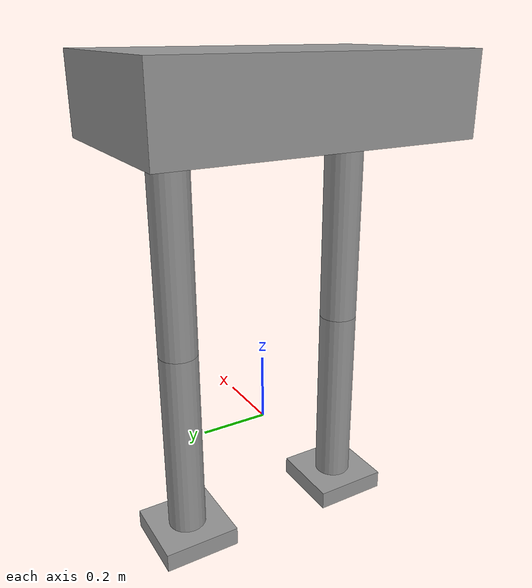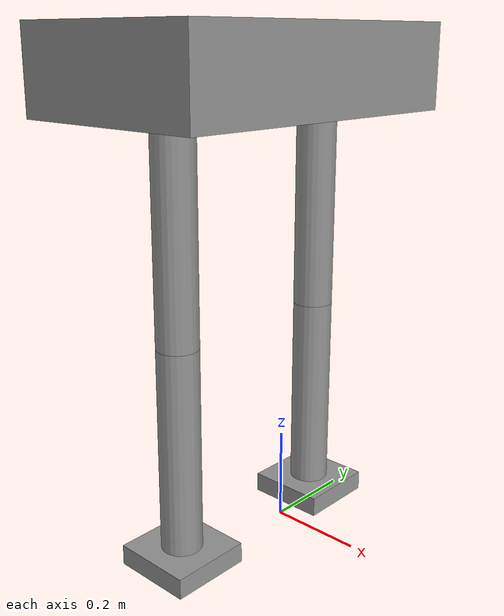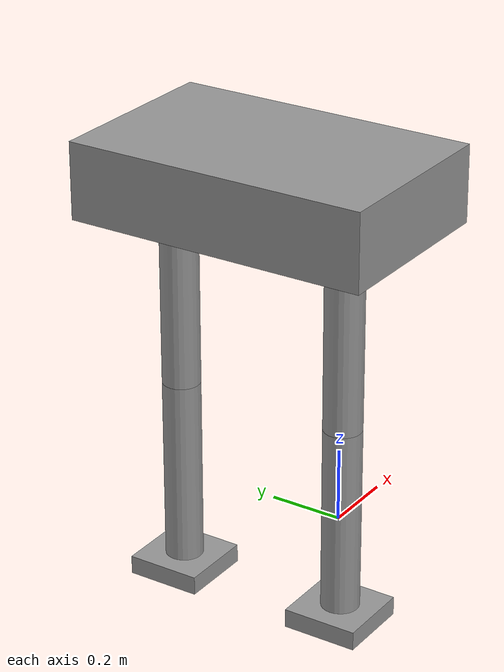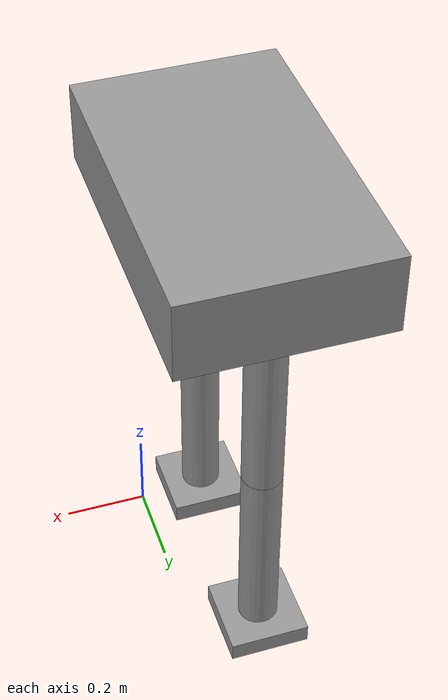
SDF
<?xml version='1.0'?>
<sdf version='1.6'>
  <model name='HumanoidRobot'>
    <link name='link_0_clone'>
      <pose frame=''>-0.198443 -0.127142 -0.1375 0 -0 0</pose>
      <inertial>
        <mass>1</mass>
        <inertia>
          <ixx>0.166667</ixx>
          <ixy>0</ixy>
          <ixz>0</ixz>
          <iyy>0.166667</iyy>
          <iyz>0</iyz>
          <izz>0.166667</izz>
        </inertia>
        <pose frame=''>0 0 0 0 -0 0</pose>
      </inertial>
      <self_collide>0</self_collide>
      <kinematic>0</kinematic>
      <visual name='visual'>
        <pose frame=''>0 0 0 0 -0 0</pose>
        <geometry>
          <box>
            <size>0.2 0.2 0.05</size>
          </box>
        </geometry>
        <material>
          <lighting>1</lighting>
          <script>
            <uri>file://media/materials/scripts/gazebo.material</uri>
            <name>Gazebo/Grey</name>
          </script>
          <shader type='pixel'>
            <normal_map>__default__</normal_map>
          </shader>
          <ambient>0.3 0.3 0.3 1</ambient>
          <diffuse>0.7 0.7 0.7 1</diffuse>
          <specular>0.01 0.01 0.01 1</specular>
          <emissive>0 0 0 1</emissive>
        </material>
        <transparency>0</transparency>
        <cast_shadows>1</cast_shadows>
      </visual>
      <collision name='collision'>
        <laser_retro>0</laser_retro>
        <max_contacts>10</max_contacts>
        <pose frame=''>0 0 0 0 -0 0</pose>
        <geometry>
          <box>
            <size>0.2 0.2 0.05</size>
          </box>
        </geometry>
        <surface>
          <friction>
            <ode>
              <mu>1</mu>
              <mu2>1</mu2>
              <fdir1>0 0 0</fdir1>
              <slip1>0</slip1>
              <slip2>0</slip2>
            </ode>
            <torsional>
              <coefficient>1</coefficient>
              <patch_radius>0</patch_radius>
              <surface_radius>0</surface_radius>
              <use_patch_radius>1</use_patch_radius>
              <ode>
                <slip>0</slip>
              </ode>
            </torsional>
          </friction>
          <bounce>
            <restitution_coefficient>0</restitution_coefficient>
            <threshold>1e+06</threshold>
          </bounce>
          <contact>
            <collide_without_contact>0</collide_without_contact>
            <collide_without_contact_bitmask>1</collide_without_contact_bitmask>
            <collide_bitmask>1</collide_bitmask>
            <ode>
              <soft_cfm>0</soft_cfm>
              <soft_erp>0.2</soft_erp>
              <kp>1e+13</kp>
              <kd>1</kd>
              <max_vel>0.01</max_vel>
              <min_depth>0</min_depth>
            </ode>
            <bullet>
              <split_impulse>1</split_impulse>
              <split_impulse_penetration_threshold>-0.01</split_impulse_penetration_threshold>
              <soft_cfm>0</soft_cfm>
              <soft_erp>0.2</soft_erp>
              <kp>1e+13</kp>
              <kd>1</kd>
            </bullet>
          </contact>
        </surface>
      </collision>
    </link>
    <link name='link_0_clone_clone'>
      <pose frame=''>-0.198527 0.351681 -0.137499 0 -0 0</pose>
      <inertial>
        <mass>1</mass>
        <inertia>
          <ixx>0.166667</ixx>
          <ixy>0</ixy>
          <ixz>0</ixz>
          <iyy>0.166667</iyy>
          <iyz>0</iyz>
          <izz>0.166667</izz>
        </inertia>
        <pose frame=''>0 0 0 0 -0 0</pose>
      </inertial>
      <self_collide>0</self_collide>
      <kinematic>0</kinematic>
      <visual name='visual'>
        <pose frame=''>0 0 0 0 -0 0</pose>
        <geometry>
          <box>
            <size>0.2 0.2 0.05</size>
          </box>
        </geometry>
        <material>
          <lighting>1</lighting>
          <script>
            <uri>file://media/materials/scripts/gazebo.material</uri>
            <name>Gazebo/Grey</name>
          </script>
          <shader type='pixel'>
            <normal_map>__default__</normal_map>
          </shader>
          <ambient>0.3 0.3 0.3 1</ambient>
          <diffuse>0.7 0.7 0.7 1</diffuse>
          <specular>0.01 0.01 0.01 1</specular>
          <emissive>0 0 0 1</emissive>
        </material>
        <transparency>0</transparency>
        <cast_shadows>1</cast_shadows>
      </visual>
      <collision name='collision'>
        <laser_retro>0</laser_retro>
        <max_contacts>10</max_contacts>
        <pose frame=''>0 0 0 0 -0 0</pose>
        <geometry>
          <box>
            <size>0.2 0.2 0.05</size>
          </box>
        </geometry>
        <surface>
          <friction>
            <ode>
              <mu>1</mu>
              <mu2>1</mu2>
              <fdir1>0 0 0</fdir1>
              <slip1>0</slip1>
              <slip2>0</slip2>
            </ode>
            <torsional>
              <coefficient>1</coefficient>
              <patch_radius>0</patch_radius>
              <surface_radius>0</surface_radius>
              <use_patch_radius>1</use_patch_radius>
              <ode>
                <slip>0</slip>
              </ode>
            </torsional>
          </friction>
          <bounce>
            <restitution_coefficient>0</restitution_coefficient>
            <threshold>1e+06</threshold>
          </bounce>
          <contact>
            <collide_without_contact>0</collide_without_contact>
            <collide_without_contact_bitmask>1</collide_without_contact_bitmask>
            <collide_bitmask>1</collide_bitmask>
            <ode>
              <soft_cfm>0</soft_cfm>
              <soft_erp>0.2</soft_erp>
              <kp>1e+13</kp>
              <kd>1</kd>
              <max_vel>0.01</max_vel>
              <min_depth>0</min_depth>
            </ode>
            <bullet>
              <split_impulse>1</split_impulse>
              <split_impulse_penetration_threshold>-0.01</split_impulse_penetration_threshold>
              <soft_cfm>0</soft_cfm>
              <soft_erp>0.2</soft_erp>
              <kp>1e+13</kp>
              <kd>1</kd>
            </bullet>
          </contact>
        </surface>
      </collision>
    </link>
    <link name='link_1_clone'>
      <pose frame=''>-0.19848 0.086402 0.987501 0 2e-06 0.000352</pose>
      <inertial>
        <mass>1</mass>
        <inertia>
          <ixx>0.166667</ixx>
          <ixy>0</ixy>
          <ixz>0</ixz>
          <iyy>0.166667</iyy>
          <iyz>0</iyz>
          <izz>0.166667</izz>
        </inertia>
        <pose frame=''>0 0 0 0 -0 0</pose>
      </inertial>
      <self_collide>0</self_collide>
      <kinematic>0</kinematic>
      <visual name='visual'>
        <pose frame=''>0 0 0 0 -0 0</pose>
        <geometry>
          <box>
            <size>0.5 0.8 0.2</size>
          </box>
        </geometry>
        <material>
          <lighting>1</lighting>
          <script>
            <uri>file://media/materials/scripts/gazebo.material</uri>
            <name>Gazebo/Grey</name>
          </script>
          <shader type='pixel'>
            <normal_map>__default__</normal_map>
          </shader>
          <ambient>0.3 0.3 0.3 1</ambient>
          <diffuse>0.7 0.7 0.7 1</diffuse>
          <specular>0.01 0.01 0.01 1</specular>
          <emissive>0 0 0 1</emissive>
        </material>
        <transparency>0</transparency>
        <cast_shadows>1</cast_shadows>
      </visual>
      <collision name='collision'>
        <laser_retro>0</laser_retro>
        <max_contacts>10</max_contacts>
        <pose frame=''>0 0 0 0 -0 0</pose>
        <geometry>
          <box>
            <size>0.5 0.8 0.2</size>
          </box>
        </geometry>
        <surface>
          <friction>
            <ode>
              <mu>1</mu>
              <mu2>1</mu2>
              <fdir1>0 0 0</fdir1>
              <slip1>0</slip1>
              <slip2>0</slip2>
            </ode>
            <torsional>
              <coefficient>1</coefficient>
              <patch_radius>0</patch_radius>
              <surface_radius>0</surface_radius>
              <use_patch_radius>1</use_patch_radius>
              <ode>
                <slip>0</slip>
              </ode>
            </torsional>
          </friction>
          <bounce>
            <restitution_coefficient>0</restitution_coefficient>
            <threshold>1e+06</threshold>
          </bounce>
          <contact>
            <collide_without_contact>0</collide_without_contact>
            <collide_without_contact_bitmask>1</collide_without_contact_bitmask>
            <collide_bitmask>1</collide_bitmask>
            <ode>
              <soft_cfm>0</soft_cfm>
              <soft_erp>0.2</soft_erp>
              <kp>1e+13</kp>
              <kd>1</kd>
              <max_vel>0.01</max_vel>
              <min_depth>0</min_depth>
            </ode>
            <bullet>
              <split_impulse>1</split_impulse>
              <split_impulse_penetration_threshold>-0.01</split_impulse_penetration_threshold>
              <soft_cfm>0</soft_cfm>
              <soft_erp>0.2</soft_erp>
              <kp>1e+13</kp>
              <kd>1</kd>
            </bullet>
          </contact>
        </surface>
      </collision>
    </link>
    <link name='link_2_clone_clone'>
      <pose frame=''>-0.198527 0.351681 0.137501 0 -0 0</pose>
      <inertial>
        <mass>1</mass>
        <inertia>
          <ixx>0.145833</ixx>
          <ixy>0</ixy>
          <ixz>0</ixz>
          <iyy>0.145833</iyy>
          <iyz>0</iyz>
          <izz>0.125</izz>
        </inertia>
        <pose frame=''>0 0 0 0 -0 0</pose>
      </inertial>
      <self_collide>0</self_collide>
      <kinematic>0</kinematic>
      <visual name='visual'>
        <pose frame=''>0 0 0 0 -0 0</pose>
        <geometry>
          <cylinder>
            <radius>0.05</radius>
            <length>0.5</length>
          </cylinder>
        </geometry>
        <material>
          <lighting>1</lighting>
          <script>
            <uri>file://media/materials/scripts/gazebo.material</uri>
            <name>Gazebo/Grey</name>
          </script>
          <shader type='pixel'>
            <normal_map>__default__</normal_map>
          </shader>
          <ambient>0.3 0.3 0.3 1</ambient>
          <diffuse>0.7 0.7 0.7 1</diffuse>
          <specular>0.01 0.01 0.01 1</specular>
          <emissive>0 0 0 1</emissive>
        </material>
        <transparency>0</transparency>
        <cast_shadows>1</cast_shadows>
      </visual>
      <collision name='collision'>
        <laser_retro>0</laser_retro>
        <max_contacts>10</max_contacts>
        <pose frame=''>0 0 0 0 -0 0</pose>
        <geometry>
          <cylinder>
            <radius>0.05</radius>
            <length>0.5</length>
          </cylinder>
        </geometry>
        <surface>
          <friction>
            <ode>
              <mu>1</mu>
              <mu2>1</mu2>
              <fdir1>0 0 0</fdir1>
              <slip1>0</slip1>
              <slip2>0</slip2>
            </ode>
            <torsional>
              <coefficient>1</coefficient>
              <patch_radius>0</patch_radius>
              <surface_radius>0</surface_radius>
              <use_patch_radius>1</use_patch_radius>
              <ode>
                <slip>0</slip>
              </ode>
            </torsional>
          </friction>
          <bounce>
            <restitution_coefficient>0</restitution_coefficient>
            <threshold>1e+06</threshold>
          </bounce>
          <contact>
            <collide_without_contact>0</collide_without_contact>
            <collide_without_contact_bitmask>1</collide_without_contact_bitmask>
            <collide_bitmask>1</collide_bitmask>
            <ode>
              <soft_cfm>0</soft_cfm>
              <soft_erp>0.2</soft_erp>
              <kp>1e+13</kp>
              <kd>1</kd>
              <max_vel>0.01</max_vel>
              <min_depth>0</min_depth>
            </ode>
            <bullet>
              <split_impulse>1</split_impulse>
              <split_impulse_penetration_threshold>-0.01</split_impulse_penetration_threshold>
              <soft_cfm>0</soft_cfm>
              <soft_erp>0.2</soft_erp>
              <kp>1e+13</kp>
              <kd>1</kd>
            </bullet>
          </contact>
        </surface>
      </collision>
    </link>
    <link name='link_2_clone_clone_0'>
      <pose frame=''>-0.198442 -0.128015 0.637501 -0 1e-06 0.000176</pose>
      <inertial>
        <mass>1</mass>
        <inertia>
          <ixx>0.145833</ixx>
          <ixy>0</ixy>
          <ixz>0</ixz>
          <iyy>0.145833</iyy>
          <iyz>0</iyz>
          <izz>0.125</izz>
        </inertia>
        <pose frame=''>0 0 0 0 -0 0</pose>
      </inertial>
      <self_collide>0</self_collide>
      <kinematic>0</kinematic>
      <gravity>1</gravity>
      <visual name='visual'>
        <pose frame=''>0 0 0 0 -0 0</pose>
        <geometry>
          <cylinder>
            <radius>0.05</radius>
            <length>0.5</length>
          </cylinder>
        </geometry>
        <material>
          <lighting>1</lighting>
          <script>
            <uri>file://media/materials/scripts/gazebo.material</uri>
            <name>Gazebo/Grey</name>
          </script>
          <shader type='pixel'>
            <normal_map>__default__</normal_map>
          </shader>
          <ambient>0.3 0.3 0.3 1</ambient>
          <diffuse>0.7 0.7 0.7 1</diffuse>
          <specular>0.01 0.01 0.01 1</specular>
          <emissive>0 0 0 1</emissive>
        </material>
        <transparency>0</transparency>
        <cast_shadows>1</cast_shadows>
      </visual>
      <collision name='collision'>
        <laser_retro>0</laser_retro>
        <max_contacts>10</max_contacts>
        <pose frame=''>0 0 0 0 -0 0</pose>
        <geometry>
          <cylinder>
            <radius>0.05</radius>
            <length>0.5</length>
          </cylinder>
        </geometry>
        <surface>
          <friction>
            <ode>
              <mu>1</mu>
              <mu2>1</mu2>
              <fdir1>0 0 0</fdir1>
              <slip1>0</slip1>
              <slip2>0</slip2>
            </ode>
            <torsional>
              <coefficient>1</coefficient>
              <patch_radius>0</patch_radius>
              <surface_radius>0</surface_radius>
              <use_patch_radius>1</use_patch_radius>
              <ode>
                <slip>0</slip>
              </ode>
            </torsional>
          </friction>
          <bounce>
            <restitution_coefficient>0</restitution_coefficient>
            <threshold>1e+06</threshold>
          </bounce>
          <contact>
            <collide_without_contact>0</collide_without_contact>
            <collide_without_contact_bitmask>1</collide_without_contact_bitmask>
            <collide_bitmask>1</collide_bitmask>
            <ode>
              <soft_cfm>0</soft_cfm>
              <soft_erp>0.2</soft_erp>
              <kp>1e+13</kp>
              <kd>1</kd>
              <max_vel>0.01</max_vel>
              <min_depth>0</min_depth>
            </ode>
            <bullet>
              <split_impulse>1</split_impulse>
              <split_impulse_penetration_threshold>-0.01</split_impulse_penetration_threshold>
              <soft_cfm>0</soft_cfm>
              <soft_erp>0.2</soft_erp>
              <kp>1e+13</kp>
              <kd>1</kd>
            </bullet>
          </contact>
        </surface>
      </collision>
    </link>
    <link name='link_2_clone_clone_0_clone'>
      <pose frame=''>-0.198526 0.351681 0.637501 0 2e-06 0.000352</pose>
      <inertial>
        <mass>1</mass>
        <inertia>
          <ixx>0.145833</ixx>
          <ixy>0</ixy>
          <ixz>0</ixz>
          <iyy>0.145833</iyy>
          <iyz>0</iyz>
          <izz>0.125</izz>
        </inertia>
        <pose frame=''>0 0 0 0 -0 0</pose>
      </inertial>
      <self_collide>0</self_collide>
      <kinematic>0</kinematic>
      <visual name='visual'>
        <pose frame=''>0 0 0 0 -0 0</pose>
        <geometry>
          <cylinder>
            <radius>0.05</radius>
            <length>0.5</length>
          </cylinder>
        </geometry>
        <material>
          <lighting>1</lighting>
          <script>
            <uri>file://media/materials/scripts/gazebo.material</uri>
            <name>Gazebo/Grey</name>
          </script>
          <shader type='pixel'>
            <normal_map>__default__</normal_map>
          </shader>
          <ambient>0.3 0.3 0.3 1</ambient>
          <diffuse>0.7 0.7 0.7 1</diffuse>
          <specular>0.01 0.01 0.01 1</specular>
          <emissive>0 0 0 1</emissive>
        </material>
        <transparency>0</transparency>
        <cast_shadows>1</cast_shadows>
      </visual>
      <collision name='collision'>
        <laser_retro>0</laser_retro>
        <max_contacts>10</max_contacts>
        <pose frame=''>0 0 0 0 -0 0</pose>
        <geometry>
          <cylinder>
            <radius>0.05</radius>
            <length>0.5</length>
          </cylinder>
        </geometry>
        <surface>
          <friction>
            <ode>
              <mu>1</mu>
              <mu2>1</mu2>
              <fdir1>0 0 0</fdir1>
              <slip1>0</slip1>
              <slip2>0</slip2>
            </ode>
            <torsional>
              <coefficient>1</coefficient>
              <patch_radius>0</patch_radius>
              <surface_radius>0</surface_radius>
              <use_patch_radius>1</use_patch_radius>
              <ode>
                <slip>0</slip>
              </ode>
            </torsional>
          </friction>
          <bounce>
            <restitution_coefficient>0</restitution_coefficient>
            <threshold>1e+06</threshold>
          </bounce>
          <contact>
            <collide_without_contact>0</collide_without_contact>
            <collide_without_contact_bitmask>1</collide_without_contact_bitmask>
            <collide_bitmask>1</collide_bitmask>
            <ode>
              <soft_cfm>0</soft_cfm>
              <soft_erp>0.2</soft_erp>
              <kp>1e+13</kp>
              <kd>1</kd>
              <max_vel>0.01</max_vel>
              <min_depth>0</min_depth>
            </ode>
            <bullet>
              <split_impulse>1</split_impulse>
              <split_impulse_penetration_threshold>-0.01</split_impulse_penetration_threshold>
              <soft_cfm>0</soft_cfm>
              <soft_erp>0.2</soft_erp>
              <kp>1e+13</kp>
              <kd>1</kd>
            </bullet>
          </contact>
        </surface>
      </collision>
    </link>
    <link name='link_2_clone_clone_clone'>
      <pose frame=''>-0.198443 -0.128015 0.137501 -0 1e-06 0.000176</pose>
      <inertial>
        <mass>1</mass>
        <inertia>
          <ixx>0.145833</ixx>
          <ixy>0</ixy>
          <ixz>0</ixz>
          <iyy>0.145833</iyy>
          <iyz>0</iyz>
          <izz>0.125</izz>
        </inertia>
        <pose frame=''>0 0 0 0 -0 0</pose>
      </inertial>
      <self_collide>0</self_collide>
      <kinematic>0</kinematic>
      <visual name='visual'>
        <pose frame=''>0 0 0 0 -0 0</pose>
        <geometry>
          <cylinder>
            <radius>0.05</radius>
            <length>0.5</length>
          </cylinder>
        </geometry>
        <material>
          <lighting>1</lighting>
          <script>
            <uri>file://media/materials/scripts/gazebo.material</uri>
            <name>Gazebo/Grey</name>
          </script>
          <shader type='pixel'>
            <normal_map>__default__</normal_map>
          </shader>
          <ambient>0.3 0.3 0.3 1</ambient>
          <diffuse>0.7 0.7 0.7 1</diffuse>
          <specular>0.01 0.01 0.01 1</specular>
          <emissive>0 0 0 1</emissive>
        </material>
        <transparency>0</transparency>
        <cast_shadows>1</cast_shadows>
      </visual>
      <collision name='collision'>
        <laser_retro>0</laser_retro>
        <max_contacts>10</max_contacts>
        <pose frame=''>0 0 0 0 -0 0</pose>
        <geometry>
          <cylinder>
            <radius>0.05</radius>
            <length>0.5</length>
          </cylinder>
        </geometry>
        <surface>
          <friction>
            <ode>
              <mu>1</mu>
              <mu2>1</mu2>
              <fdir1>0 0 0</fdir1>
              <slip1>0</slip1>
              <slip2>0</slip2>
            </ode>
            <torsional>
              <coefficient>1</coefficient>
              <patch_radius>0</patch_radius>
              <surface_radius>0</surface_radius>
              <use_patch_radius>1</use_patch_radius>
              <ode>
                <slip>0</slip>
              </ode>
            </torsional>
          </friction>
          <bounce>
            <restitution_coefficient>0</restitution_coefficient>
            <threshold>1e+06</threshold>
          </bounce>
          <contact>
            <collide_without_contact>0</collide_without_contact>
            <collide_without_contact_bitmask>1</collide_without_contact_bitmask>
            <collide_bitmask>1</collide_bitmask>
            <ode>
              <soft_cfm>0</soft_cfm>
              <soft_erp>0.2</soft_erp>
              <kp>1e+13</kp>
              <kd>1</kd>
              <max_vel>0.01</max_vel>
              <min_depth>0</min_depth>
            </ode>
            <bullet>
              <split_impulse>1</split_impulse>
              <split_impulse_penetration_threshold>-0.01</split_impulse_penetration_threshold>
              <soft_cfm>0</soft_cfm>
              <soft_erp>0.2</soft_erp>
              <kp>1e+13</kp>
              <kd>1</kd>
            </bullet>
          </contact>
        </surface>
      </collision>
    </link>
    <joint name='link_0_clone_JOINT_3' type='fixed'>
      <parent>link_0_clone</parent>
      <child>link_2_clone_clone_clone</child>
      <pose frame=''>0 0 0 0 -0 0</pose>
      <physics>
        <ode>
          <limit>
            <cfm>0</cfm>
            <erp>0.2</erp>
          </limit>
          <suspension>
            <cfm>0</cfm>
            <erp>0.2</erp>
          </suspension>
        </ode>
      </physics>
    </joint>
    <joint name='link_0_clone_clone_JOINT_2' type='fixed'>
      <parent>link_0_clone_clone</parent>
      <child>link_2_clone_clone</child>
      <pose frame=''>0 0 0 0 -0 0</pose>
      <physics>
        <ode>
          <limit>
            <cfm>0</cfm>
            <erp>0.2</erp>
          </limit>
          <suspension>
            <cfm>0</cfm>
            <erp>0.2</erp>
          </suspension>
        </ode>
      </physics>
    </joint>
    <joint name='link_0_clone_clone_JOINT_3' type='fixed'>
      <parent>link_0_clone_clone</parent>
      <child>link_2_clone_clone</child>
      <pose frame=''>0 0 0 0 -0 0</pose>
      <physics>
        <ode>
          <limit>
            <cfm>0</cfm>
            <erp>0.2</erp>
          </limit>
          <suspension>
            <cfm>0</cfm>
            <erp>0.2</erp>
          </suspension>
        </ode>
      </physics>
    </joint>
    <joint name='link_2_clone_clone_0_JOINT_10' type='fixed'>
      <parent>link_2_clone_clone_0</parent>
      <child>link_1_clone</child>
      <pose frame=''>0 0 0 0 -0 0</pose>
      <physics>
        <ode>
          <limit>
            <cfm>0</cfm>
            <erp>0.2</erp>
          </limit>
          <suspension>
            <cfm>0</cfm>
            <erp>0.2</erp>
          </suspension>
        </ode>
      </physics>
    </joint>
    <joint name='link_2_clone_clone_0_clone_JOINT_8' type='fixed'>
      <parent>link_2_clone_clone_0_clone</parent>
      <child>link_1_clone</child>
      <pose frame=''>0 0 0 0 -0 0</pose>
      <physics>
        <ode>
          <limit>
            <cfm>0</cfm>
            <erp>0.2</erp>
          </limit>
          <suspension>
            <cfm>0</cfm>
            <erp>0.2</erp>
          </suspension>
        </ode>
      </physics>
    </joint>
    <joint name='link_2_clone_clone_JOINT_6' type='fixed'>
      <parent>link_2_clone_clone</parent>
      <child>link_2_clone_clone_0_clone</child>
      <pose frame=''>0 0 0 0 -0 0</pose>
      <physics>
        <ode>
          <limit>
            <cfm>0</cfm>
            <erp>0.2</erp>
          </limit>
          <suspension>
            <cfm>0</cfm>
            <erp>0.2</erp>
          </suspension>
        </ode>
      </physics>
    </joint>
    <joint name='link_2_clone_clone_clone_JOINT_5' type='fixed'>
      <parent>link_2_clone_clone_clone</parent>
      <child>link_2_clone_clone_0</child>
      <pose frame=''>0 0 0 0 -0 0</pose>
      <physics>
        <ode>
          <limit>
            <cfm>0</cfm>
            <erp>0.2</erp>
          </limit>
          <suspension>
            <cfm>0</cfm>
            <erp>0.2</erp>
          </suspension>
        </ode>
      </physics>
    </joint>
    <static>0</static>
    <allow_auto_disable>1</allow_auto_disable>
  </model>
</sdf>
